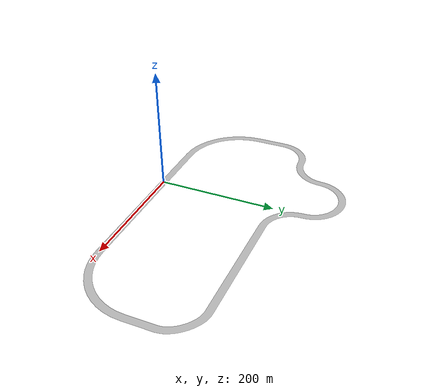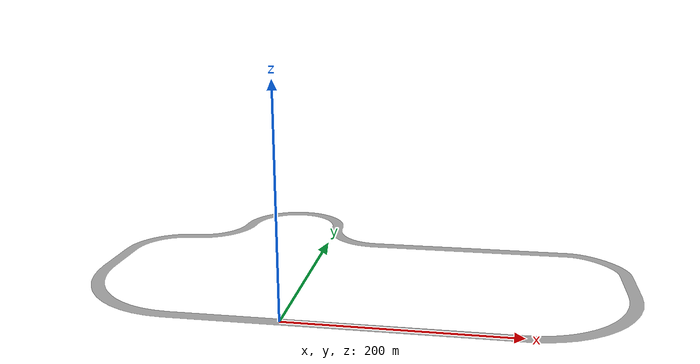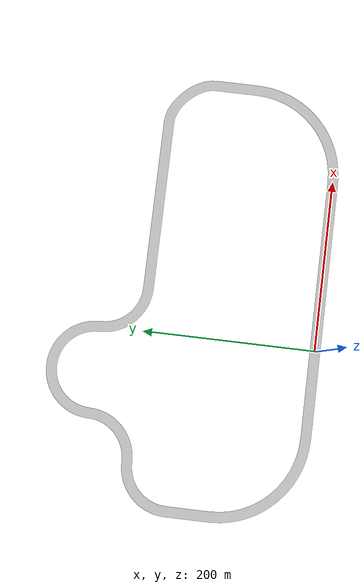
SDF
<sdf version="1.9">
  <model name="smaller_track">
    <static>true</static>

    <link name="link">
      <visual name="visual">
        <geometry>
          <mesh>
            <uri>model://smaller_track/meshes/smaller_track.dae</uri>
          </mesh>
        </geometry>
      </visual>

      <collision name="collision">
        <geometry>
          <mesh>
            <uri>model://smaller_track/meshes/smaller_track.dae</uri>
          </mesh>
        </geometry>
      </collision>
    </link>
  </model>
</sdf>
